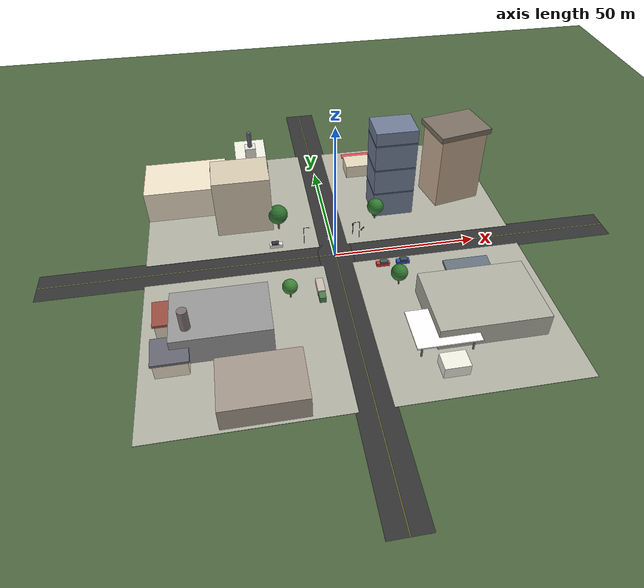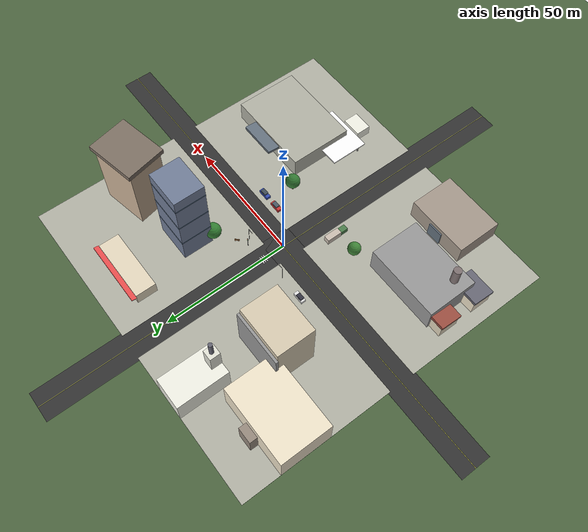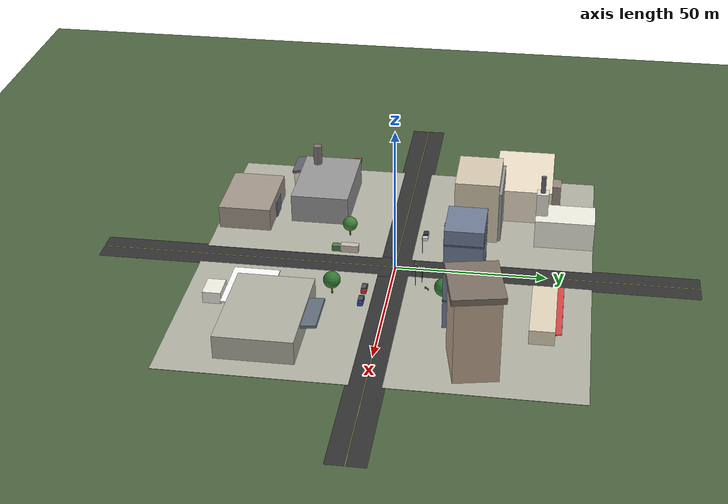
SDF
<sdf version="1.6">
 <world name="city_multicopter">
  <physics name="4ms" type="ignored">
   <max_step_size>0.004</max_step_size>
   <real_time_factor>1.0</real_time_factor>
  </physics>
  <plugin filename="gz-sim-physics-system" name="gz::sim::systems::Physics"/>
  <plugin filename="gz-sim-scene-broadcaster-system" name="gz::sim::systems::SceneBroadcaster"/>
  <plugin filename="gz-sim-user-commands-system" name="gz::sim::systems::UserCommands"/>
  <plugin filename="gz-sim-sensors-system" name="gz::sim::systems::Sensors">
   <render_engine>ogre2</render_engine>
  </plugin>
  <plugin filename="gz-sim8-pose-publisher-system" name="gz::sim::systems::PosePublisher">
   <publish_nested_model_pose>true</publish_nested_model_pose>
   <publish_link_pose>false</publish_link_pose>
   <publish_collision_pose>false</publish_collision_pose>
   <publish_visual_pose>false</publish_visual_pose>
   <use_pose_vector_msg>true</use_pose_vector_msg>
   <static_publisher>false</static_publisher>
   <update_frequency>50</update_frequency>
  </plugin>
  <light type="directional" name="sun">
   <pose>0 0 100 0 0 0</pose>
   <diffuse>0.85 0.85 0.8 1</diffuse>
   <specular>0.3 0.3 0.3 1</specular>
   <attenuation>
    <range>1000</range>
    <constant>0.9</constant>
    <linear>0.01</linear>
    <quadratic>0.001</quadratic>
   </attenuation>
   <direction>-0.4 0.2 -0.9</direction>
  </light>
  <model name="ground_base">
   <static>true</static>
   <link name="link">
    <collision name="collision">
     <geometry><plane><normal>0 0 1</normal><size>300 300</size></plane></geometry>
    </collision>
    <visual name="visual">
     <geometry><plane><normal>0 0 1</normal><size>300 300</size></plane></geometry>
     <material><ambient>0.25 0.35 0.2 1</ambient><diffuse>0.3 0.4 0.25 1</diffuse></material>
    </visual>
   </link>
  </model>
  <model name="road_ew">
   <static>true</static>
   <pose>0 0 0.005 0 0 0</pose>
   <link name="link">
    <visual name="asphalt">
     <geometry><box><size>200 12 0.01</size></box></geometry>
     <material><ambient>0.15 0.15 0.15 1</ambient><diffuse>0.2 0.2 0.2 1</diffuse></material>
    </visual>
   </link>
  </model>
  <model name="road_ns">
   <static>true</static>
   <pose>0 0 0.005 0 0 0</pose>
   <link name="link">
    <visual name="asphalt">
     <geometry><box><size>12 200 0.01</size></box></geometry>
     <material><ambient>0.15 0.15 0.15 1</ambient><diffuse>0.2 0.2 0.2 1</diffuse></material>
    </visual>
   </link>
  </model>
  <model name="marking_ew_center">
   <static>true</static>
   <pose>0 0 0.015 0 0 0</pose>
   <link name="link">
    <visual name="line">
     <geometry><box><size>200 0.15 0.001</size></box></geometry>
     <material><ambient>1 1 0.3 1</ambient><diffuse>1 1 0.4 1</diffuse></material>
    </visual>
   </link>
  </model>
  <model name="marking_ns_center">
   <static>true</static>
   <pose>0 0 0.015 0 0 0</pose>
   <link name="link">
    <visual name="line">
     <geometry><box><size>0.15 200 0.001</size></box></geometry>
     <material><ambient>1 1 0.3 1</ambient><diffuse>1 1 0.4 1</diffuse></material>
    </visual>
   </link>
  </model>
  <model name="sidewalk_ne">
   <static>true</static>
   <pose>35 35 0.05 0 0 0</pose>
   <link name="link">
    <visual name="visual">
     <geometry><box><size>60 60 0.1</size></box></geometry>
     <material><ambient>0.6 0.6 0.55 1</ambient><diffuse>0.7 0.7 0.65 1</diffuse></material>
    </visual>
    <collision name="collision"><geometry><box><size>60 60 0.1</size></box></geometry></collision>
   </link>
  </model>
  <model name="sidewalk_nw">
   <static>true</static>
   <pose>-35 35 0.05 0 0 0</pose>
   <link name="link">
    <visual name="visual">
     <geometry><box><size>60 60 0.1</size></box></geometry>
     <material><ambient>0.6 0.6 0.55 1</ambient><diffuse>0.7 0.7 0.65 1</diffuse></material>
    </visual>
    <collision name="collision"><geometry><box><size>60 60 0.1</size></box></geometry></collision>
   </link>
  </model>
  <model name="sidewalk_se">
   <static>true</static>
   <pose>35 -35 0.05 0 0 0</pose>
   <link name="link">
    <visual name="visual">
     <geometry><box><size>60 60 0.1</size></box></geometry>
     <material><ambient>0.6 0.6 0.55 1</ambient><diffuse>0.7 0.7 0.65 1</diffuse></material>
    </visual>
    <collision name="collision"><geometry><box><size>60 60 0.1</size></box></geometry></collision>
   </link>
  </model>
  <model name="sidewalk_sw">
   <static>true</static>
   <pose>-35 -35 0.05 0 0 0</pose>
   <link name="link">
    <visual name="visual">
     <geometry><box><size>60 60 0.1</size></box></geometry>
     <material><ambient>0.6 0.6 0.55 1</ambient><diffuse>0.7 0.7 0.65 1</diffuse></material>
    </visual>
    <collision name="collision"><geometry><box><size>60 60 0.1</size></box></geometry></collision>
   </link>
  </model>
  <model name="crosswalk_n">
   <static>true</static>
   <pose>0 8 0.02 0 0 0</pose>
   <link name="link">
    <visual name="v1">
     <geometry><box><size>3 0.4 0.001</size></box></geometry>
     <material><ambient>0.9 0.9 0.9 1</ambient><diffuse>1 1 1 1</diffuse></material>
    </visual>
    <visual name="v2">
     <geometry><box><size>3 0.4 0.001</size></box></geometry>
     <pose>0 0.8 0 0 0 0</pose>
     <material><ambient>0.9 0.9 0.9 1</ambient><diffuse>1 1 1 1</diffuse></material>
    </visual>
    <visual name="v3">
     <geometry><box><size>3 0.4 0.001</size></box></geometry>
     <pose>0 1.6 0 0 0 0</pose>
     <material><ambient>0.9 0.9 0.9 1</ambient><diffuse>1 1 1 1</diffuse></material>
    </visual>
   </link>
  </model>
  <model name="bldg_office_tower">
   <static>true</static>
   <pose>25 25 0.1 0 0 0</pose>
   <link name="link">
    <visual name="base">
     <geometry><box><size>15 12 35</size></box></geometry>
     <pose>0 0 17.5 0 0 0</pose>
     <material>
      <ambient>0.35 0.4 0.5 1</ambient>
      <diffuse>0.45 0.5 0.6 1</diffuse>
      <specular>0.4 0.4 0.4 1</specular>
     </material>
    </visual>
    <visual name="windows">
     <geometry><box><size>15.1 12.1 0.5</size></box></geometry>
     <pose>0 0 10 0 0 0</pose>
     <material>
      <ambient>0.2 0.3 0.4 1</ambient>
      <diffuse>0.3 0.4 0.5 1</diffuse>
      <specular>0.6 0.6 0.6 1</specular>
     </material>
    </visual>
    <visual name="windows2">
     <geometry><box><size>15.1 12.1 0.5</size></box></geometry>
     <pose>0 0 20 0 0 0</pose>
     <material>
      <ambient>0.2 0.3 0.4 1</ambient>
      <diffuse>0.3 0.4 0.5 1</diffuse>
      <specular>0.6 0.6 0.6 1</specular>
     </material>
    </visual>
    <visual name="windows3">
     <geometry><box><size>15.1 12.1 0.5</size></box></geometry>
     <pose>0 0 30 0 0 0</pose>
     <material>
      <ambient>0.2 0.3 0.4 1</ambient>
      <diffuse>0.3 0.4 0.5 1</diffuse>
      <specular>0.6 0.6 0.6 1</specular>
     </material>
    </visual>
    <collision name="collision">
     <geometry><box><size>15 12 35</size></box></geometry>
     <pose>0 0 17.5 0 0 0</pose>
    </collision>
   </link>
  </model>
  <model name="bldg_hotel">
   <static>true</static>
   <pose>50 30 0.1 0 0 0.2</pose>
   <link name="link">
    <visual name="main">
     <geometry><box><size>18 14 28</size></box></geometry>
     <pose>0 0 14 0 0 0</pose>
     <material><ambient>0.7 0.6 0.5 1</ambient><diffuse>0.8 0.7 0.6 1</diffuse></material>
    </visual>
    <visual name="roof">
     <geometry><box><size>20 16 2</size></box></geometry>
     <pose>0 0 29 0 0 0</pose>
     <material><ambient>0.4 0.35 0.3 1</ambient><diffuse>0.5 0.45 0.4 1</diffuse></material>
    </visual>
    <collision name="collision">
     <geometry><box><size>18 14 28</size></box></geometry>
     <pose>0 0 14 0 0 0</pose>
    </collision>
   </link>
  </model>
  <model name="bldg_shops_1">
   <static>true</static>
   <pose>25 50 0.1 0 0 0</pose>
   <link name="link">
    <visual name="main">
     <geometry><box><size>25 8 5</size></box></geometry>
     <pose>0 0 2.5 0 0 0</pose>
     <material><ambient>0.8 0.75 0.65 1</ambient><diffuse>0.9 0.85 0.75 1</diffuse></material>
    </visual>
    <visual name="awning">
     <geometry><box><size>26 2 0.3</size></box></geometry>
     <pose>0 5 4.5 0.2 0 0</pose>
     <material><ambient>0.8 0.2 0.2 1</ambient><diffuse>0.9 0.3 0.3 1</diffuse></material>
    </visual>
    <collision name="collision">
     <geometry><box><size>25 8 5</size></box></geometry>
     <pose>0 0 2.5 0 0 0</pose>
    </collision>
   </link>
  </model>
  <model name="bldg_apartment_1">
   <static>true</static>
   <pose>-30 25 0.1 0 0 0</pose>
   <link name="link">
    <visual name="main">
     <geometry><box><size>20 15 22</size></box></geometry>
     <pose>0 0 11 0 0 0</pose>
     <material><ambient>0.75 0.7 0.6 1</ambient><diffuse>0.85 0.8 0.7 1</diffuse></material>
    </visual>
    <visual name="balconies">
     <geometry><box><size>21 1 18</size></box></geometry>
     <pose>0 8 10 0 0 0</pose>
     <material><ambient>0.5 0.5 0.5 1</ambient><diffuse>0.6 0.6 0.6 1</diffuse></material>
    </visual>
    <collision name="collision">
     <geometry><box><size>20 15 22</size></box></geometry>
     <pose>0 0 11 0 0 0</pose>
    </collision>
   </link>
  </model>
  <model name="bldg_school">
   <static>true</static>
   <pose>-50 40 0.1 0 0 0</pose>
   <link name="link">
    <visual name="main">
     <geometry><box><size>30 20 12</size></box></geometry>
     <pose>0 0 6 0 0 0</pose>
     <material><ambient>0.85 0.8 0.7 1</ambient><diffuse>0.95 0.9 0.8 1</diffuse></material>
    </visual>
    <visual name="entrance">
     <geometry><box><size>6 3 8</size></box></geometry>
     <pose>0 11.5 4 0 0 0</pose>
     <material><ambient>0.5 0.45 0.4 1</ambient><diffuse>0.6 0.55 0.5 1</diffuse></material>
    </visual>
    <collision name="collision">
     <geometry><box><size>30 20 12</size></box></geometry>
     <pose>0 0 6 0 0 0</pose>
    </collision>
   </link>
  </model>
  <model name="bldg_church">
   <static>true</static>
   <pose>-25 55 0.1 0 0 0</pose>
   <link name="link">
    <visual name="main">
     <geometry><box><size>12 20 10</size></box></geometry>
     <pose>0 0 5 0 0 0</pose>
     <material><ambient>0.9 0.9 0.85 1</ambient><diffuse>0.95 0.95 0.9 1</diffuse></material>
    </visual>
    <visual name="tower">
     <geometry><box><size>4 4 18</size></box></geometry>
     <pose>0 -8 9 0 0 0</pose>
     <material><ambient>0.85 0.85 0.8 1</ambient><diffuse>0.9 0.9 0.85 1</diffuse></material>
    </visual>
    <visual name="spire">
     <geometry><cylinder><radius>0.8</radius><length>6</length></cylinder></geometry>
     <pose>0 -8 21 0 0 0</pose>
     <material><ambient>0.3 0.3 0.35 1</ambient><diffuse>0.4 0.4 0.45 1</diffuse></material>
    </visual>
    <collision name="collision">
     <geometry><box><size>12 20 10</size></box></geometry>
     <pose>0 0 5 0 0 0</pose>
    </collision>
   </link>
  </model>
  <model name="bldg_mall">
   <static>true</static>
   <pose>40 -35 0.1 0 0 0</pose>
   <link name="link">
    <visual name="main">
     <geometry><box><size>35 25 8</size></box></geometry>
     <pose>0 0 4 0 0 0</pose>
     <material><ambient>0.6 0.6 0.55 1</ambient><diffuse>0.7 0.7 0.65 1</diffuse></material>
    </visual>
    <visual name="entrance_canopy">
     <geometry><box><size>15 5 1</size></box></geometry>
     <pose>0 15 7 0.1 0 0</pose>
     <material><ambient>0.3 0.35 0.4 1</ambient><diffuse>0.4 0.45 0.5 1</diffuse></material>
    </visual>
    <collision name="collision">
     <geometry><box><size>35 25 8</size></box></geometry>
     <pose>0 0 4 0 0 0</pose>
    </collision>
   </link>
  </model>
  <model name="bldg_gas_station">
   <static>true</static>
   <pose>25 -55 0.1 0 0 0</pose>
   <link name="link">
    <visual name="shop">
     <geometry><box><size>8 6 4</size></box></geometry>
     <pose>0 0 2 0 0 0</pose>
     <material><ambient>0.9 0.9 0.85 1</ambient><diffuse>0.95 0.95 0.9 1</diffuse></material>
    </visual>
    <visual name="canopy">
     <geometry><box><size>20 15 0.5</size></box></geometry>
     <pose>0 12 5 0 0 0</pose>
     <material><ambient>0.9 0.9 0.9 1</ambient><diffuse>1 1 1 1</diffuse></material>
    </visual>
    <visual name="pillar1">
     <geometry><cylinder><radius>0.3</radius><length>5</length></cylinder></geometry>
     <pose>-8 6 2.5 0 0 0</pose>
     <material><ambient>0.3 0.3 0.3 1</ambient><diffuse>0.4 0.4 0.4 1</diffuse></material>
    </visual>
    <visual name="pillar2">
     <geometry><cylinder><radius>0.3</radius><length>5</length></cylinder></geometry>
     <pose>8 6 2.5 0 0 0</pose>
     <material><ambient>0.3 0.3 0.3 1</ambient><diffuse>0.4 0.4 0.4 1</diffuse></material>
    </visual>
    <collision name="collision">
     <geometry><box><size>8 6 4</size></box></geometry>
     <pose>0 0 2 0 0 0</pose>
    </collision>
   </link>
  </model>
  <model name="bldg_factory">
   <static>true</static>
   <pose>-40 -30 0.1 0 0 0</pose>
   <link name="link">
    <visual name="main">
     <geometry><box><size>30 20 10</size></box></geometry>
     <pose>0 0 5 0 0 0</pose>
     <material><ambient>0.5 0.5 0.5 1</ambient><diffuse>0.6 0.6 0.6 1</diffuse></material>
    </visual>
    <visual name="chimney">
     <geometry><cylinder><radius>1.5</radius><length>12</length></cylinder></geometry>
     <pose>-10 -5 11 0 0 0</pose>
     <material><ambient>0.4 0.35 0.35 1</ambient><diffuse>0.5 0.45 0.45 1</diffuse></material>
    </visual>
    <collision name="collision">
     <geometry><box><size>30 20 10</size></box></geometry>
     <pose>0 0 5 0 0 0</pose>
    </collision>
   </link>
  </model>
  <model name="bldg_warehouse">
   <static>true</static>
   <pose>-30 -55 0.1 0 0 0</pose>
   <link name="link">
    <visual name="main">
     <geometry><box><size>25 18 8</size></box></geometry>
     <pose>0 0 4 0 0 0</pose>
     <material><ambient>0.55 0.5 0.45 1</ambient><diffuse>0.65 0.6 0.55 1</diffuse></material>
    </visual>
    <visual name="door">
     <geometry><box><size>6 0.5 6</size></box></geometry>
     <pose>0 9.25 3 0 0 0</pose>
     <material><ambient>0.3 0.35 0.4 1</ambient><diffuse>0.4 0.45 0.5 1</diffuse></material>
    </visual>
    <collision name="collision">
     <geometry><box><size>25 18 8</size></box></geometry>
     <pose>0 0 4 0 0 0</pose>
    </collision>
   </link>
  </model>
  <model name="house_1">
   <static>true</static>
   <pose>-55 -25 0.1 0 0 0</pose>
   <link name="link">
    <visual name="main">
     <geometry><box><size>10 8 6</size></box></geometry>
     <pose>0 0 3 0 0 0</pose>
     <material><ambient>0.8 0.75 0.65 1</ambient><diffuse>0.9 0.85 0.75 1</diffuse></material>
    </visual>
    <visual name="roof">
     <geometry><box><size>11 9 1</size></box></geometry>
     <pose>0 0 6.5 0.15 0 0</pose>
     <material><ambient>0.5 0.25 0.2 1</ambient><diffuse>0.6 0.3 0.25 1</diffuse></material>
    </visual>
    <collision name="collision">
     <geometry><box><size>10 8 6</size></box></geometry>
     <pose>0 0 3 0 0 0</pose>
    </collision>
   </link>
  </model>
  <model name="house_2">
   <static>true</static>
   <pose>-55 -40 0.1 0 0 0</pose>
   <link name="link">
    <visual name="main">
     <geometry><box><size>10 8 6</size></box></geometry>
     <pose>0 0 3 0 0 0</pose>
     <material><ambient>0.85 0.8 0.7 1</ambient><diffuse>0.95 0.9 0.8 1</diffuse></material>
    </visual>
    <visual name="roof">
     <geometry><box><size>11 9 1</size></box></geometry>
     <pose>0 0 6.5 0.15 0 0</pose>
     <material><ambient>0.3 0.3 0.35 1</ambient><diffuse>0.4 0.4 0.45 1</diffuse></material>
    </visual>
    <collision name="collision">
     <geometry><box><size>10 8 6</size></box></geometry>
     <pose>0 0 3 0 0 0</pose>
    </collision>
   </link>
  </model>
  <model name="car_1">
   <static>true</static>
   <pose>15 -8 0.1 0 0 0</pose>
   <link name="link">
    <visual name="body">
     <geometry><box><size>4.5 1.8 1.2</size></box></geometry>
     <pose>0 0 0.6 0 0 0</pose>
     <material><ambient>0.6 0.1 0.1 1</ambient><diffuse>0.8 0.2 0.2 1</diffuse></material>
    </visual>
    <visual name="cabin">
     <geometry><box><size>2.5 1.6 0.8</size></box></geometry>
     <pose>0.3 0 1.4 0 0 0</pose>
     <material>
      <ambient>0.2 0.25 0.3 1</ambient>
      <diffuse>0.3 0.35 0.4 1</diffuse>
      <specular>0.5 0.5 0.5 1</specular>
     </material>
    </visual>
   </link>
  </model>
  <model name="car_2">
   <static>true</static>
   <pose>22 -8 0.1 0 0 0</pose>
   <link name="link">
    <visual name="body">
     <geometry><box><size>4.5 1.8 1.2</size></box></geometry>
     <pose>0 0 0.6 0 0 0</pose>
     <material><ambient>0.1 0.2 0.5 1</ambient><diffuse>0.2 0.3 0.7 1</diffuse></material>
    </visual>
    <visual name="cabin">
     <geometry><box><size>2.5 1.6 0.8</size></box></geometry>
     <pose>0.3 0 1.4 0 0 0</pose>
     <material>
      <ambient>0.15 0.2 0.25 1</ambient>
      <diffuse>0.25 0.3 0.35 1</diffuse>
      <specular>0.5 0.5 0.5 1</specular>
     </material>
    </visual>
   </link>
  </model>
  <model name="car_3">
   <static>true</static>
   <pose>-20 8 0.1 0 0 3.14</pose>
   <link name="link">
    <visual name="body">
     <geometry><box><size>4.5 1.8 1.2</size></box></geometry>
     <pose>0 0 0.6 0 0 0</pose>
     <material><ambient>0.8 0.8 0.8 1</ambient><diffuse>0.9 0.9 0.9 1</diffuse></material>
    </visual>
    <visual name="cabin">
     <geometry><box><size>2.5 1.6 0.8</size></box></geometry>
     <pose>0.3 0 1.4 0 0 0</pose>
     <material>
      <ambient>0.1 0.1 0.15 1</ambient>
      <diffuse>0.2 0.2 0.25 1</diffuse>
      <specular>0.5 0.5 0.5 1</specular>
     </material>
    </visual>
   </link>
  </model>
  <model name="truck_1">
   <static>true</static>
   <pose>-8 -18 0.1 0 0 1.57</pose>
   <link name="link">
    <visual name="cabin">
     <geometry><box><size>3 2.2 2</size></box></geometry>
     <pose>-3 0 1.2 0 0 0</pose>
     <material><ambient>0.2 0.4 0.2 1</ambient><diffuse>0.3 0.5 0.3 1</diffuse></material>
    </visual>
    <visual name="cargo">
     <geometry><box><size>6 2.4 2.5</size></box></geometry>
     <pose>1.5 0 1.35 0 0 0</pose>
     <material><ambient>0.7 0.65 0.6 1</ambient><diffuse>0.8 0.75 0.7 1</diffuse></material>
    </visual>
   </link>
  </model>
  <model name="tree_1">
   <static>true</static>
   <pose>18 18 0 0 0 0</pose>
   <link name="link">
    <visual name="trunk">
     <geometry><cylinder><radius>0.3</radius><length>4</length></cylinder></geometry>
     <pose>0 0 2 0 0 0</pose>
     <material><ambient>0.35 0.25 0.15 1</ambient><diffuse>0.45 0.35 0.2 1</diffuse></material>
    </visual>
    <visual name="foliage">
     <geometry><sphere><radius>3</radius></sphere></geometry>
     <pose>0 0 5.5 0 0 0</pose>
     <material><ambient>0.15 0.4 0.15 1</ambient><diffuse>0.2 0.5 0.2 1</diffuse></material>
    </visual>
   </link>
  </model>
  <model name="tree_2">
   <static>true</static>
   <pose>-18 18 0 0 0 0</pose>
   <link name="link">
    <visual name="trunk">
     <geometry><cylinder><radius>0.35</radius><length>5</length></cylinder></geometry>
     <pose>0 0 2.5 0 0 0</pose>
     <material><ambient>0.4 0.3 0.15 1</ambient><diffuse>0.5 0.4 0.2 1</diffuse></material>
    </visual>
    <visual name="foliage">
     <geometry><sphere><radius>3.5</radius></sphere></geometry>
     <pose>0 0 6.5 0 0 0</pose>
     <material><ambient>0.12 0.35 0.12 1</ambient><diffuse>0.18 0.45 0.18 1</diffuse></material>
    </visual>
   </link>
  </model>
  <model name="tree_3">
   <static>true</static>
   <pose>-18 -18 0 0 0 0</pose>
   <link name="link">
    <visual name="trunk">
     <geometry><cylinder><radius>0.25</radius><length>3.5</length></cylinder></geometry>
     <pose>0 0 1.75 0 0 0</pose>
     <material><ambient>0.3 0.22 0.12 1</ambient><diffuse>0.4 0.32 0.18 1</diffuse></material>
    </visual>
    <visual name="foliage">
     <geometry><sphere><radius>2.5</radius></sphere></geometry>
     <pose>0 0 4.8 0 0 0</pose>
     <material><ambient>0.18 0.42 0.15 1</ambient><diffuse>0.25 0.52 0.22 1</diffuse></material>
    </visual>
   </link>
  </model>
  <model name="tree_4">
   <static>true</static>
   <pose>18 -18 0 0 0 0</pose>
   <link name="link">
    <visual name="trunk">
     <geometry><cylinder><radius>0.28</radius><length>4.2</length></cylinder></geometry>
     <pose>0 0 2.1 0 0 0</pose>
     <material><ambient>0.32 0.24 0.14 1</ambient><diffuse>0.42 0.34 0.2 1</diffuse></material>
    </visual>
    <visual name="foliage">
     <geometry><sphere><radius>2.8</radius></sphere></geometry>
     <pose>0 0 5.2 0 0 0</pose>
     <material><ambient>0.14 0.38 0.14 1</ambient><diffuse>0.2 0.48 0.2 1</diffuse></material>
    </visual>
   </link>
  </model>
  <model name="streetlight_1">
   <static>true</static>
   <pose>-10 8 0 0 0 0</pose>
   <link name="link">
    <visual name="pole">
     <geometry><cylinder><radius>0.08</radius><length>7</length></cylinder></geometry>
     <pose>0 0 3.5 0 0 0</pose>
     <material><ambient>0.25 0.25 0.25 1</ambient><diffuse>0.35 0.35 0.35 1</diffuse></material>
    </visual>
    <visual name="arm">
     <geometry><box><size>2 0.1 0.1</size></box></geometry>
     <pose>1 0 7 0 0 0</pose>
     <material><ambient>0.25 0.25 0.25 1</ambient><diffuse>0.35 0.35 0.35 1</diffuse></material>
    </visual>
    <visual name="lamp">
     <geometry><box><size>0.4 0.25 0.15</size></box></geometry>
     <pose>2 0 6.9 0 0 0</pose>
     <material>
      <ambient>1 0.95 0.8 1</ambient>
      <diffuse>1 0.98 0.9 1</diffuse>
      <emissive>0.6 0.55 0.4 1</emissive>
     </material>
    </visual>
   </link>
  </model>
  <model name="streetlight_2">
   <static>true</static>
   <pose>10 8 0 0 0 3.14</pose>
   <link name="link">
    <visual name="pole">
     <geometry><cylinder><radius>0.08</radius><length>7</length></cylinder></geometry>
     <pose>0 0 3.5 0 0 0</pose>
     <material><ambient>0.25 0.25 0.25 1</ambient><diffuse>0.35 0.35 0.35 1</diffuse></material>
    </visual>
    <visual name="arm">
     <geometry><box><size>2 0.1 0.1</size></box></geometry>
     <pose>1 0 7 0 0 0</pose>
     <material><ambient>0.25 0.25 0.25 1</ambient><diffuse>0.35 0.35 0.35 1</diffuse></material>
    </visual>
    <visual name="lamp">
     <geometry><box><size>0.4 0.25 0.15</size></box></geometry>
     <pose>2 0 6.9 0 0 0</pose>
     <material>
      <ambient>1 0.95 0.8 1</ambient>
      <diffuse>1 0.98 0.9 1</diffuse>
      <emissive>0.6 0.55 0.4 1</emissive>
     </material>
    </visual>
   </link>
  </model>
  <model name="traffic_light_1">
   <static>true</static>
   <pose>8 10 0 0 0 0</pose>
   <link name="link">
    <visual name="pole">
     <geometry><cylinder><radius>0.1</radius><length>4</length></cylinder></geometry>
     <pose>0 0 2 0 0 0</pose>
     <material><ambient>0.2 0.2 0.2 1</ambient><diffuse>0.3 0.3 0.3 1</diffuse></material>
    </visual>
    <visual name="box">
     <geometry><box><size>0.4 0.3 1</size></box></geometry>
     <pose>0 0 4.5 0 0 0</pose>
     <material><ambient>0.15 0.15 0.15 1</ambient><diffuse>0.2 0.2 0.2 1</diffuse></material>
    </visual>
    <visual name="red">
     <geometry><sphere><radius>0.12</radius></sphere></geometry>
     <pose>0 0.2 4.8 0 0 0</pose>
     <material>
      <ambient>0.8 0.1 0.1 1</ambient>
      <diffuse>1 0.2 0.2 1</diffuse>
      <emissive>0.5 0 0 1</emissive>
     </material>
    </visual>
    <visual name="yellow">
     <geometry><sphere><radius>0.12</radius></sphere></geometry>
     <pose>0 0.2 4.5 0 0 0</pose>
     <material><ambient>0.8 0.7 0.1 1</ambient><diffuse>1 0.9 0.2 1</diffuse></material>
    </visual>
    <visual name="green">
     <geometry><sphere><radius>0.12</radius></sphere></geometry>
     <pose>0 0.2 4.2 0 0 0</pose>
     <material><ambient>0.1 0.6 0.1 1</ambient><diffuse>0.2 0.8 0.2 1</diffuse></material>
    </visual>
   </link>
  </model>
  <model name="bench_1">
   <static>true</static>
   <pose>12 12 0.1 0 0 0.785</pose>
   <link name="link">
    <visual name="seat">
     <geometry><box><size>1.8 0.4 0.08</size></box></geometry>
     <pose>0 0 0.45 0 0 0</pose>
     <material><ambient>0.4 0.28 0.15 1</ambient><diffuse>0.5 0.35 0.2 1</diffuse></material>
    </visual>
    <visual name="back">
     <geometry><box><size>1.8 0.08 0.5</size></box></geometry>
     <pose>0 -0.18 0.7 0 0 0</pose>
     <material><ambient>0.4 0.28 0.15 1</ambient><diffuse>0.5 0.35 0.2 1</diffuse></material>
    </visual>
    <visual name="leg1">
     <geometry><box><size>0.08 0.35 0.45</size></box></geometry>
     <pose>0.7 0 0.225 0 0 0</pose>
     <material><ambient>0.2 0.2 0.2 1</ambient><diffuse>0.3 0.3 0.3 1</diffuse></material>
    </visual>
    <visual name="leg2">
     <geometry><box><size>0.08 0.35 0.45</size></box></geometry>
     <pose>-0.7 0 0.225 0 0 0</pose>
     <material><ambient>0.2 0.2 0.2 1</ambient><diffuse>0.3 0.3 0.3 1</diffuse></material>
    </visual>
   </link>
  </model>
 </world>
</sdf>
